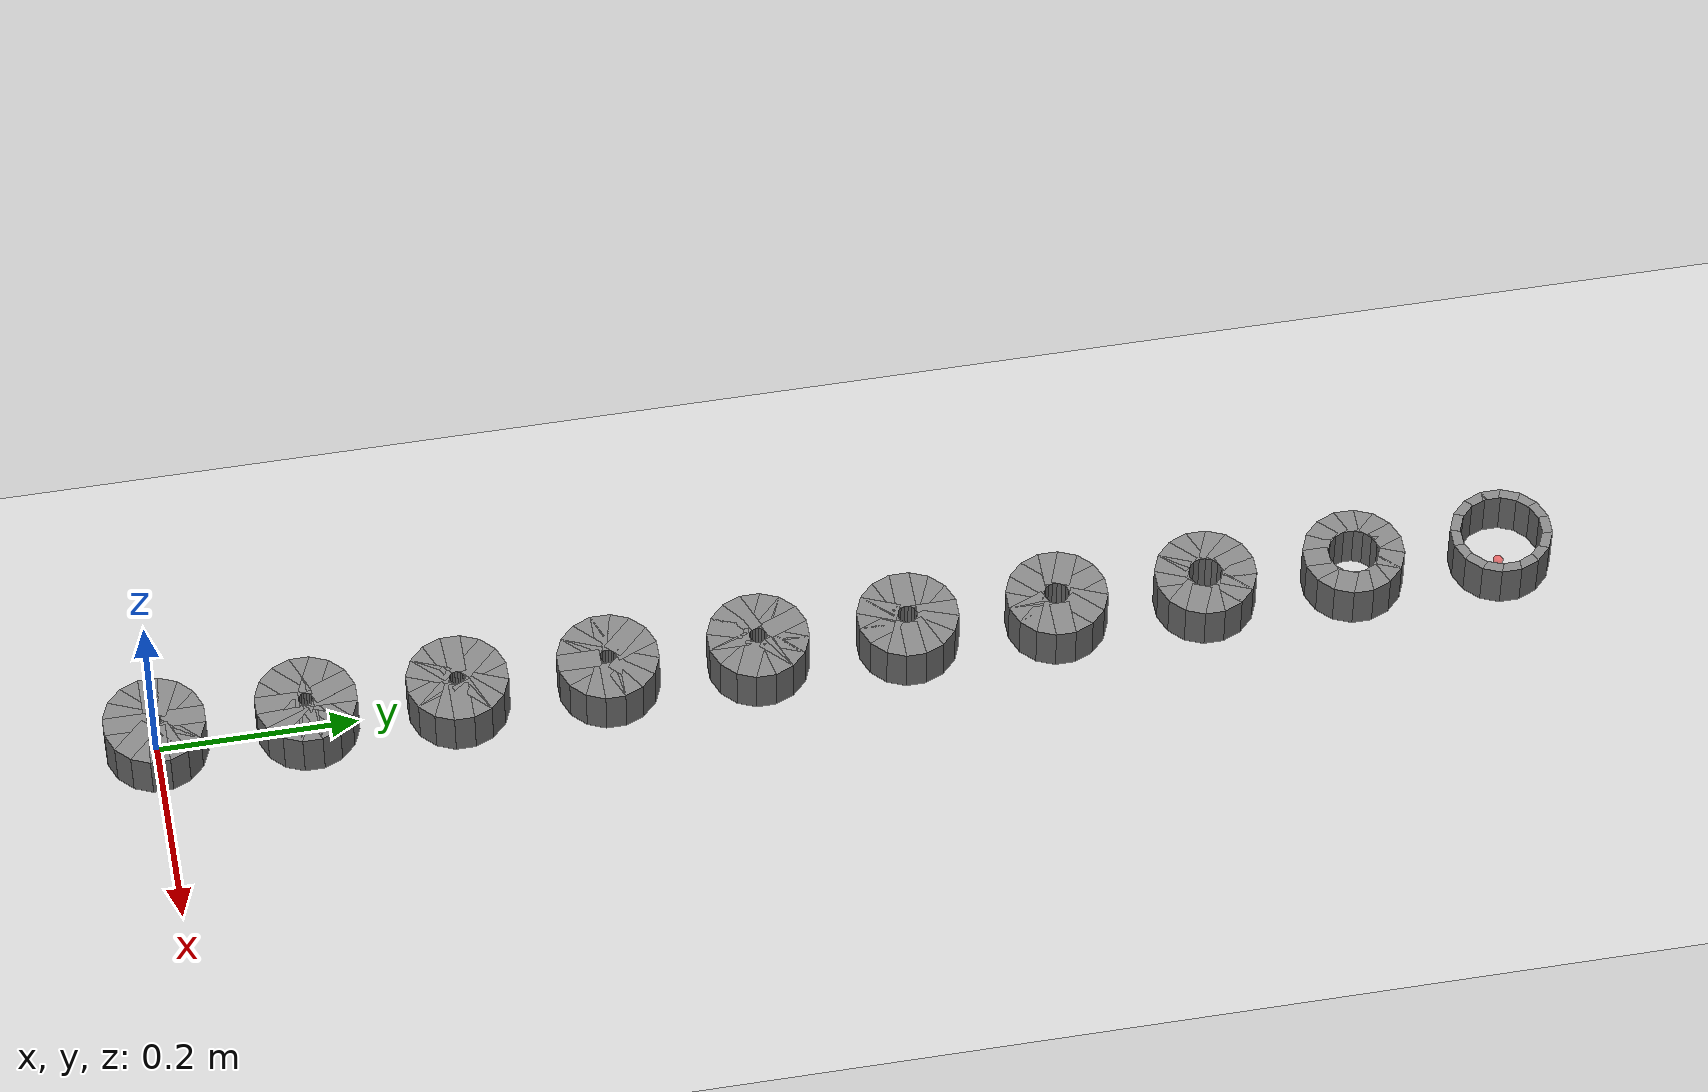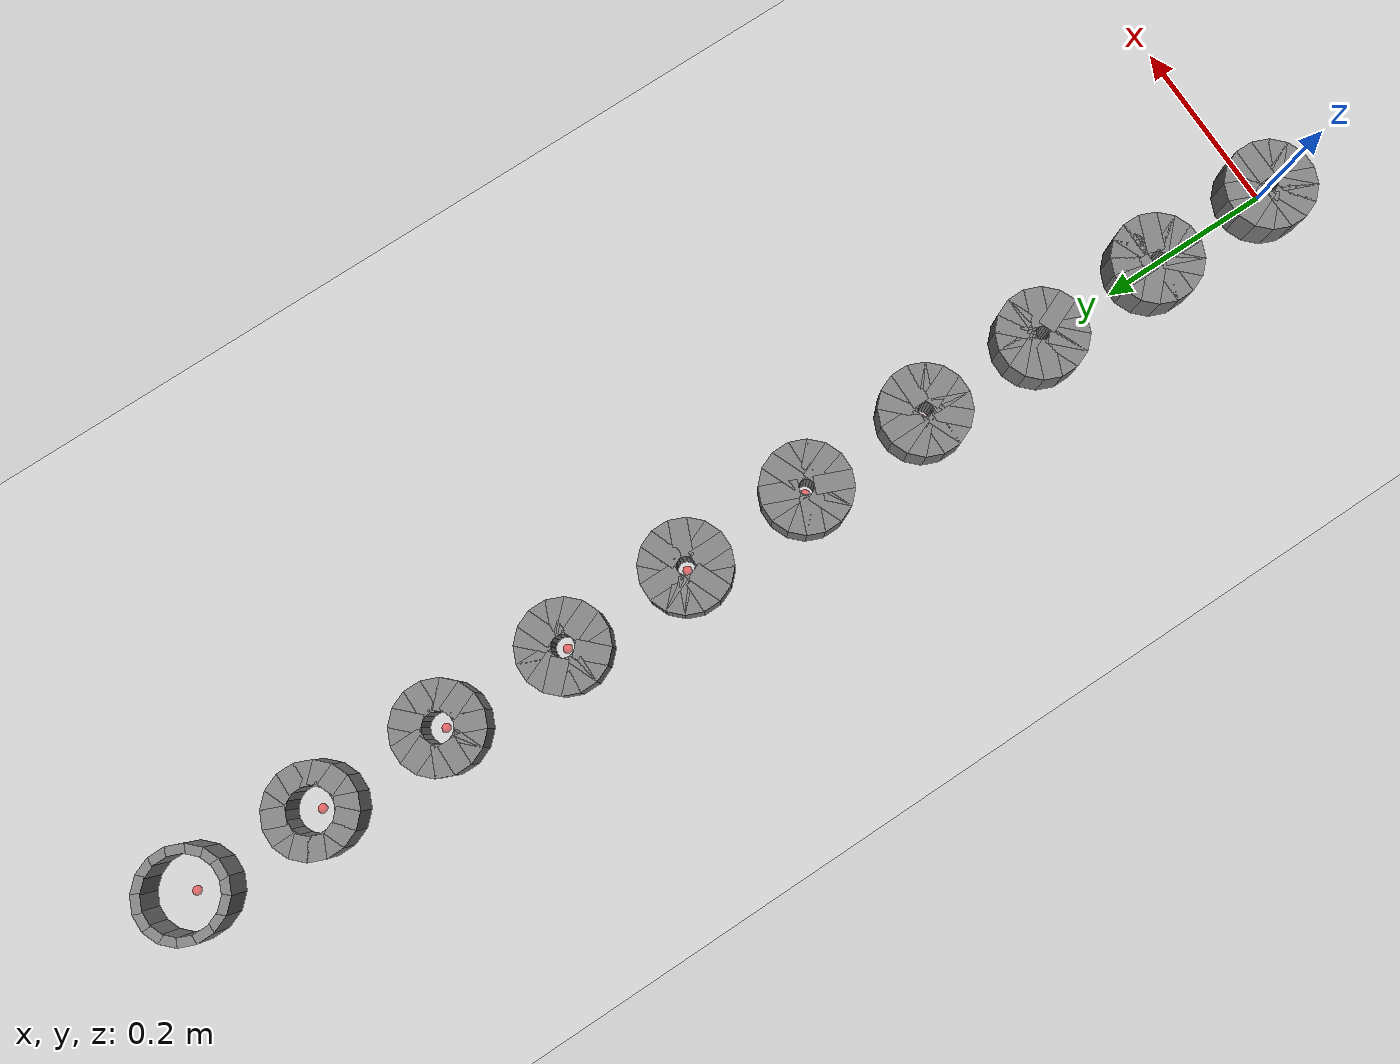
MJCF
<?xml version="1.0" ?>

<mujoco>
  <compiler angle="radian" coordinate="local" meshdir="meshes/"/>

  <default>
    <joint damping="0.5"/>
    <default class="visual">
      <geom contype="0" conaffinity="0"/>
    </default>
    <default class="collision">
      <geom contype="1" conaffinity="1"/>
    </default>
    <site rgba="1 0 0 .5"/>
  </default>

  <asset>
    <texture type="skybox" builtin="gradient" rgb1="1 1 1" rgb2=".6 .8 1" width="256" height="256"/>
  </asset>

  <worldbody>
    <light pos="0 0 1000" castshadow="false"/>
    <geom type="plane" size="10 10 1" rgba=".8 .8 .8 1"/>

    <body pos="0 0 0">
      <include file="hole/polyhedral_hole_inner=0-006856_outer=0-05_height=0-05_num_facets=16_id=090.xml"/>
    </body>
    <body pos="0 .15 0">
      <include file="hole/polyhedral_hole_inner=0-006967_outer=0-05_height=0-05_num_facets=16_id=080.xml"/>
    </body>
    <body pos="0 .3 0">
      <include file="hole/polyhedral_hole_inner=0-007172_outer=0-05_height=0-05_num_facets=16_id=070.xml"/>
    </body>
    <body pos="0 .45 0">
      <include file="hole/polyhedral_hole_inner=0-007553_outer=0-05_height=0-05_num_facets=16_id=060.xml"/>
    </body>
    <body pos="0 .6 0">
      <include file="hole/polyhedral_hole_inner=0-008257_outer=0-05_height=0-05_num_facets=16_id=050.xml"/>
    </body>
    <body pos="0 .75 0">
      <include file="hole/polyhedral_hole_inner=0-009560_outer=0-05_height=0-05_num_facets=16_id=040.xml"/>
    </body>
    <body pos="0 .9 0">
      <include file="hole/polyhedral_hole_inner=0-011973_outer=0-05_height=0-05_num_facets=16_id=030.xml"/>
    </body>
    <body pos="0 1.05 0">
      <include file="hole/polyhedral_hole_inner=0-016438_outer=0-05_height=0-05_num_facets=16_id=020.xml"/>
    </body>
    <body pos="0 1.2 0">
      <include file="hole/polyhedral_hole_inner=0-024703_outer=0-05_height=0-05_num_facets=16_id=010.xml"/>
    </body>

    <body pos="0 1.35 0">
      <include file="hole/polyhedral_hole_inner=0-040000_outer=0-05_height=0-05_num_facets=16_id=000.xml"/>
    </body>
  </worldbody>
</mujoco>

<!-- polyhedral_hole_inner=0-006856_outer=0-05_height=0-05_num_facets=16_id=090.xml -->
<mujoco>
	<body name="hole">
		<geom class="collision" euler="0 0 1.5707963267948966" pos="0.028427763865818186 0.0 0.025" size="0.009945618368982879 0.02157223613418182 0.025" type="box"/>
		<geom class="collision" euler="0 0 1.9634954084936207" pos="0.026263829190693356 0.010878834250635577 0.025" size="0.009945618368982879 0.02157223613418182 0.025" type="box"/>
		<geom class="collision" euler="0 0 2.356194490192345" pos="0.020101464603489945 0.02010146460348994 0.025" size="0.009945618368982879 0.02157223613418182 0.025" type="box"/>
		<geom class="collision" euler="0 0 2.748893571891069" pos="0.010878834250635579 0.026263829190693356 0.025" size="0.009945618368982879 0.02157223613418182 0.025" type="box"/>
		<geom class="collision" euler="0 0 3.141592653589793" pos="1.7406985012595515e-18 0.028427763865818186 0.025" size="0.009945618368982879 0.02157223613418182 0.025" type="box"/>
		<geom class="collision" euler="0 0 3.5342917352885173" pos="-0.010878834250635575 0.026263829190693356 0.025" size="0.009945618368982879 0.02157223613418182 0.025" type="box"/>
		<geom class="collision" euler="0 0 3.9269908169872414" pos="-0.02010146460348994 0.020101464603489945 0.025" size="0.009945618368982879 0.02157223613418182 0.025" type="box"/>
		<geom class="collision" euler="0 0 4.319689898685965" pos="-0.026263829190693356 0.01087883425063558 0.025" size="0.009945618368982879 0.02157223613418182 0.025" type="box"/>
		<geom class="collision" euler="0 0 4.71238898038469" pos="-0.028427763865818186 3.481397002519103e-18 0.025" size="0.009945618368982879 0.02157223613418182 0.025" type="box"/>
		<geom class="collision" euler="0 0 5.105088062083414" pos="-0.02626382919069336 -0.010878834250635573 0.025" size="0.009945618368982879 0.02157223613418182 0.025" type="box"/>
		<geom class="collision" euler="0 0 5.497787143782138" pos="-0.02010146460348995 -0.02010146460348994 0.025" size="0.009945618368982879 0.02157223613418182 0.025" type="box"/>
		<geom class="collision" euler="0 0 5.890486225480862" pos="-0.010878834250635593 -0.02626382919069335 0.025" size="0.009945618368982879 0.02157223613418182 0.025" type="box"/>
		<geom class="collision" euler="0 0 6.283185307179586" pos="-5.222095503778654e-18 -0.028427763865818186 0.025" size="0.009945618368982879 0.02157223613418182 0.025" type="box"/>
		<geom class="collision" euler="0 0 6.675884388878311" pos="0.010878834250635584 -0.026263829190693352 0.025" size="0.009945618368982879 0.02157223613418182 0.025" type="box"/>
		<geom class="collision" euler="0 0 7.0685834705770345" pos="0.020101464603489938 -0.02010146460348995 0.025" size="0.009945618368982879 0.02157223613418182 0.025" type="box"/>
		<geom class="collision" euler="0 0 7.461282552275758" pos="0.02626382919069335 -0.010878834250635594 0.025" size="0.009945618368982879 0.02157223613418182 0.025" type="box"/>
		<site euler="-3.141592653589793 0 0" name="hole_base" pos="0 0 0" size="0.005 0.005 0.005"/>
	</body>
</mujoco>

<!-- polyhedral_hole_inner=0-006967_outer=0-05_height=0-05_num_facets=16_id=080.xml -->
<mujoco>
	<body name="hole">
		<geom class="collision" euler="0 0 1.5707963267948966" pos="0.028483295921134723 0.0 0.025" size="0.009945618368982879 0.021516704078865277 0.025" type="box"/>
		<geom class="collision" euler="0 0 1.9634954084936207" pos="0.026315134119998588 0.010900085448170397 0.025" size="0.009945618368982879 0.021516704078865277 0.025" type="box"/>
		<geom class="collision" euler="0 0 2.356194490192345" pos="0.020140731696377492 0.02014073169637749 0.025" size="0.009945618368982879 0.021516704078865277 0.025" type="box"/>
		<geom class="collision" euler="0 0 2.748893571891069" pos="0.010900085448170399 0.026315134119998588 0.025" size="0.009945618368982879 0.021516704078865277 0.025" type="box"/>
		<geom class="collision" euler="0 0 3.141592653589793" pos="1.744098858949225e-18 0.028483295921134723 0.025" size="0.009945618368982879 0.021516704078865277 0.025" type="box"/>
		<geom class="collision" euler="0 0 3.5342917352885173" pos="-0.010900085448170395 0.026315134119998588 0.025" size="0.009945618368982879 0.021516704078865277 0.025" type="box"/>
		<geom class="collision" euler="0 0 3.9269908169872414" pos="-0.02014073169637749 0.020140731696377492 0.025" size="0.009945618368982879 0.021516704078865277 0.025" type="box"/>
		<geom class="collision" euler="0 0 4.319689898685965" pos="-0.026315134119998588 0.0109000854481704 0.025" size="0.009945618368982879 0.021516704078865277 0.025" type="box"/>
		<geom class="collision" euler="0 0 4.71238898038469" pos="-0.028483295921134723 3.48819771789845e-18 0.025" size="0.009945618368982879 0.021516704078865277 0.025" type="box"/>
		<geom class="collision" euler="0 0 5.105088062083414" pos="-0.02631513411999859 -0.010900085448170393 0.025" size="0.009945618368982879 0.021516704078865277 0.025" type="box"/>
		<geom class="collision" euler="0 0 5.497787143782138" pos="-0.020140731696377496 -0.02014073169637749 0.025" size="0.009945618368982879 0.021516704078865277 0.025" type="box"/>
		<geom class="collision" euler="0 0 5.890486225480862" pos="-0.010900085448170413 -0.02631513411999858 0.025" size="0.009945618368982879 0.021516704078865277 0.025" type="box"/>
		<geom class="collision" euler="0 0 6.283185307179586" pos="-5.232296576847674e-18 -0.028483295921134723 0.025" size="0.009945618368982879 0.021516704078865277 0.025" type="box"/>
		<geom class="collision" euler="0 0 6.675884388878311" pos="0.010900085448170404 -0.026315134119998584 0.025" size="0.009945618368982879 0.021516704078865277 0.025" type="box"/>
		<geom class="collision" euler="0 0 7.0685834705770345" pos="0.020140731696377485 -0.020140731696377496 0.025" size="0.009945618368982879 0.021516704078865277 0.025" type="box"/>
		<geom class="collision" euler="0 0 7.461282552275758" pos="0.02631513411999858 -0.010900085448170414 0.025" size="0.009945618368982879 0.021516704078865277 0.025" type="box"/>
		<site euler="-3.141592653589793 0 0" name="hole_base" pos="0 0 0" size="0.005 0.005 0.005"/>
	</body>
</mujoco>

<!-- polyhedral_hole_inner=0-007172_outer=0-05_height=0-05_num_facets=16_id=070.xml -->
<mujoco>
	<body name="hole">
		<geom class="collision" euler="0 0 1.5707963267948966" pos="0.028586079378571244 0.0 0.025" size="0.009945618368982879 0.021413920621428755 0.025" type="box"/>
		<geom class="collision" euler="0 0 1.9634954084936207" pos="0.026410093652604934 0.010939418974452556 0.025" size="0.009945618368982879 0.021413920621428755 0.025" type="box"/>
		<geom class="collision" euler="0 0 2.356194490192345" pos="0.020213410576124656 0.020213410576124653 0.025" size="0.009945618368982879 0.021413920621428755 0.025" type="box"/>
		<geom class="collision" euler="0 0 2.748893571891069" pos="0.010939418974452558 0.026410093652604934 0.025" size="0.009945618368982879 0.021413920621428755 0.025" type="box"/>
		<geom class="collision" euler="0 0 3.141592653589793" pos="1.750392530556972e-18 0.028586079378571244 0.025" size="0.009945618368982879 0.021413920621428755 0.025" type="box"/>
		<geom class="collision" euler="0 0 3.5342917352885173" pos="-0.010939418974452554 0.026410093652604934 0.025" size="0.009945618368982879 0.021413920621428755 0.025" type="box"/>
		<geom class="collision" euler="0 0 3.9269908169872414" pos="-0.020213410576124653 0.020213410576124656 0.025" size="0.009945618368982879 0.021413920621428755 0.025" type="box"/>
		<geom class="collision" euler="0 0 4.319689898685965" pos="-0.026410093652604934 0.01093941897445256 0.025" size="0.009945618368982879 0.021413920621428755 0.025" type="box"/>
		<geom class="collision" euler="0 0 4.71238898038469" pos="-0.028586079378571244 3.500785061113944e-18 0.025" size="0.009945618368982879 0.021413920621428755 0.025" type="box"/>
		<geom class="collision" euler="0 0 5.105088062083414" pos="-0.026410093652604938 -0.010939418974452553 0.025" size="0.009945618368982879 0.021413920621428755 0.025" type="box"/>
		<geom class="collision" euler="0 0 5.497787143782138" pos="-0.02021341057612466 -0.020213410576124653 0.025" size="0.009945618368982879 0.021413920621428755 0.025" type="box"/>
		<geom class="collision" euler="0 0 5.890486225480862" pos="-0.010939418974452572 -0.026410093652604927 0.025" size="0.009945618368982879 0.021413920621428755 0.025" type="box"/>
		<geom class="collision" euler="0 0 6.283185307179586" pos="-5.251177591670915e-18 -0.028586079378571244 0.025" size="0.009945618368982879 0.021413920621428755 0.025" type="box"/>
		<geom class="collision" euler="0 0 6.675884388878311" pos="0.010939418974452563 -0.02641009365260493 0.025" size="0.009945618368982879 0.021413920621428755 0.025" type="box"/>
		<geom class="collision" euler="0 0 7.0685834705770345" pos="0.02021341057612465 -0.02021341057612466 0.025" size="0.009945618368982879 0.021413920621428755 0.025" type="box"/>
		<geom class="collision" euler="0 0 7.461282552275758" pos="0.026410093652604927 -0.010939418974452574 0.025" size="0.009945618368982879 0.021413920621428755 0.025" type="box"/>
		<site euler="-3.141592653589793 0 0" name="hole_base" pos="0 0 0" size="0.005 0.005 0.005"/>
	</body>
</mujoco>

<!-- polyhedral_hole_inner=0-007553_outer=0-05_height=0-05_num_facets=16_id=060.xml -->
<mujoco>
	<body name="hole">
		<geom class="collision" euler="0 0 1.5707963267948966" pos="0.02877631975527595 0.0 0.025" size="0.009945618368982879 0.021223680244724055 0.025" type="box"/>
		<geom class="collision" euler="0 0 1.9634954084936207" pos="0.02658585284289965 0.011012220814784342 0.025" size="0.009945618368982879 0.021223680244724055 0.025" type="box"/>
		<geom class="collision" euler="0 0 2.356194490192345" pos="0.02034793083654804 0.020347930836548036 0.025" size="0.009945618368982879 0.021223680244724055 0.025" type="box"/>
		<geom class="collision" euler="0 0 2.748893571891069" pos="0.011012220814784342 0.02658585284289965 0.025" size="0.009945618368982879 0.021223680244724055 0.025" type="box"/>
		<geom class="collision" euler="0 0 3.141592653589793" pos="1.762041393976972e-18 0.02877631975527595 0.025" size="0.009945618368982879 0.021223680244724055 0.025" type="box"/>
		<geom class="collision" euler="0 0 3.5342917352885173" pos="-0.01101222081478434 0.02658585284289965 0.025" size="0.009945618368982879 0.021223680244724055 0.025" type="box"/>
		<geom class="collision" euler="0 0 3.9269908169872414" pos="-0.020347930836548036 0.02034793083654804 0.025" size="0.009945618368982879 0.021223680244724055 0.025" type="box"/>
		<geom class="collision" euler="0 0 4.319689898685965" pos="-0.02658585284289965 0.011012220814784344 0.025" size="0.009945618368982879 0.021223680244724055 0.025" type="box"/>
		<geom class="collision" euler="0 0 4.71238898038469" pos="-0.02877631975527595 3.524082787953944e-18 0.025" size="0.009945618368982879 0.021223680244724055 0.025" type="box"/>
		<geom class="collision" euler="0 0 5.105088062083414" pos="-0.026585852842899653 -0.011012220814784339 0.025" size="0.009945618368982879 0.021223680244724055 0.025" type="box"/>
		<geom class="collision" euler="0 0 5.497787143782138" pos="-0.020347930836548043 -0.020347930836548036 0.025" size="0.009945618368982879 0.021223680244724055 0.025" type="box"/>
		<geom class="collision" euler="0 0 5.890486225480862" pos="-0.011012220814784358 -0.026585852842899646 0.025" size="0.009945618368982879 0.021223680244724055 0.025" type="box"/>
		<geom class="collision" euler="0 0 6.283185307179586" pos="-5.286124181930916e-18 -0.02877631975527595 0.025" size="0.009945618368982879 0.021223680244724055 0.025" type="box"/>
		<geom class="collision" euler="0 0 6.675884388878311" pos="0.011012220814784347 -0.026585852842899646 0.025" size="0.009945618368982879 0.021223680244724055 0.025" type="box"/>
		<geom class="collision" euler="0 0 7.0685834705770345" pos="0.020347930836548032 -0.020347930836548043 0.025" size="0.009945618368982879 0.021223680244724055 0.025" type="box"/>
		<geom class="collision" euler="0 0 7.461282552275758" pos="0.026585852842899646 -0.01101222081478436 0.025" size="0.009945618368982879 0.021223680244724055 0.025" type="box"/>
		<site euler="-3.141592653589793 0 0" name="hole_base" pos="0 0 0" size="0.005 0.005 0.005"/>
	</body>
</mujoco>

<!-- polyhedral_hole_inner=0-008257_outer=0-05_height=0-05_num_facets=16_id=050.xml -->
<mujoco>
	<body name="hole">
		<geom class="collision" euler="0 0 1.5707963267948966" pos="0.029128432846539674 0.0 0.025" size="0.009945618368982879 0.02087156715346033 0.025" type="box"/>
		<geom class="collision" euler="0 0 1.9634954084936207" pos="0.026911162921047484 0.011146968661129825 0.025" size="0.009945618368982879 0.02087156715346033 0.025" type="box"/>
		<geom class="collision" euler="0 0 2.356194490192345" pos="0.020596912391125176 0.020596912391125172 0.025" size="0.009945618368982879 0.02087156715346033 0.025" type="box"/>
		<geom class="collision" euler="0 0 2.748893571891069" pos="0.011146968661129826 0.026911162921047484 0.025" size="0.009945618368982879 0.02087156715346033 0.025" type="box"/>
		<geom class="collision" euler="0 0 3.141592653589793" pos="1.783602102484672e-18 0.029128432846539674 0.025" size="0.009945618368982879 0.02087156715346033 0.025" type="box"/>
		<geom class="collision" euler="0 0 3.5342917352885173" pos="-0.011146968661129823 0.026911162921047484 0.025" size="0.009945618368982879 0.02087156715346033 0.025" type="box"/>
		<geom class="collision" euler="0 0 3.9269908169872414" pos="-0.020596912391125172 0.020596912391125176 0.025" size="0.009945618368982879 0.02087156715346033 0.025" type="box"/>
		<geom class="collision" euler="0 0 4.319689898685965" pos="-0.026911162921047484 0.011146968661129828 0.025" size="0.009945618368982879 0.02087156715346033 0.025" type="box"/>
		<geom class="collision" euler="0 0 4.71238898038469" pos="-0.029128432846539674 3.567204204969344e-18 0.025" size="0.009945618368982879 0.02087156715346033 0.025" type="box"/>
		<geom class="collision" euler="0 0 5.105088062083414" pos="-0.026911162921047487 -0.011146968661129821 0.025" size="0.009945618368982879 0.02087156715346033 0.025" type="box"/>
		<geom class="collision" euler="0 0 5.497787143782138" pos="-0.02059691239112518 -0.020596912391125172 0.025" size="0.009945618368982879 0.02087156715346033 0.025" type="box"/>
		<geom class="collision" euler="0 0 5.890486225480862" pos="-0.011146968661129842 -0.026911162921047477 0.025" size="0.009945618368982879 0.02087156715346033 0.025" type="box"/>
		<geom class="collision" euler="0 0 6.283185307179586" pos="-5.350806307454015e-18 -0.029128432846539674 0.025" size="0.009945618368982879 0.02087156715346033 0.025" type="box"/>
		<geom class="collision" euler="0 0 6.675884388878311" pos="0.011146968661129832 -0.02691116292104748 0.025" size="0.009945618368982879 0.02087156715346033 0.025" type="box"/>
		<geom class="collision" euler="0 0 7.0685834705770345" pos="0.02059691239112517 -0.02059691239112518 0.025" size="0.009945618368982879 0.02087156715346033 0.025" type="box"/>
		<geom class="collision" euler="0 0 7.461282552275758" pos="0.026911162921047477 -0.011146968661129844 0.025" size="0.009945618368982879 0.02087156715346033 0.025" type="box"/>
		<site euler="-3.141592653589793 0 0" name="hole_base" pos="0 0 0" size="0.005 0.005 0.005"/>
	</body>
</mujoco>

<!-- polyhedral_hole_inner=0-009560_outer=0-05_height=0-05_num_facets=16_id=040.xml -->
<mujoco>
	<body name="hole">
		<geom class="collision" euler="0 0 1.5707963267948966" pos="0.029780153744000618 0.0 0.025" size="0.009945618368982879 0.02021984625599938 0.025" type="box"/>
		<geom class="collision" euler="0 0 1.9634954084936207" pos="0.027513274519121538 0.011396371451114235 0.025" size="0.009945618368982879 0.02021984625599938 0.025" type="box"/>
		<geom class="collision" euler="0 0 2.356194490192345" pos="0.021057748657160792 0.02105774865716079 0.025" size="0.009945618368982879 0.02021984625599938 0.025" type="box"/>
		<geom class="collision" euler="0 0 2.748893571891069" pos="0.011396371451114237 0.027513274519121538 0.025" size="0.009945618368982879 0.02021984625599938 0.025" type="box"/>
		<geom class="collision" euler="0 0 3.141592653589793" pos="1.823508498035321e-18 0.029780153744000618 0.025" size="0.009945618368982879 0.02021984625599938 0.025" type="box"/>
		<geom class="collision" euler="0 0 3.5342917352885173" pos="-0.011396371451114233 0.027513274519121538 0.025" size="0.009945618368982879 0.02021984625599938 0.025" type="box"/>
		<geom class="collision" euler="0 0 3.9269908169872414" pos="-0.02105774865716079 0.021057748657160792 0.025" size="0.009945618368982879 0.02021984625599938 0.025" type="box"/>
		<geom class="collision" euler="0 0 4.319689898685965" pos="-0.027513274519121538 0.011396371451114239 0.025" size="0.009945618368982879 0.02021984625599938 0.025" type="box"/>
		<geom class="collision" euler="0 0 4.71238898038469" pos="-0.029780153744000618 3.647016996070642e-18 0.025" size="0.009945618368982879 0.02021984625599938 0.025" type="box"/>
		<geom class="collision" euler="0 0 5.105088062083414" pos="-0.02751327451912154 -0.011396371451114232 0.025" size="0.009945618368982879 0.02021984625599938 0.025" type="box"/>
		<geom class="collision" euler="0 0 5.497787143782138" pos="-0.021057748657160792 -0.02105774865716079 0.025" size="0.009945618368982879 0.02021984625599938 0.025" type="box"/>
		<geom class="collision" euler="0 0 5.890486225480862" pos="-0.011396371451114252 -0.02751327451912153 0.025" size="0.009945618368982879 0.02021984625599938 0.025" type="box"/>
		<geom class="collision" euler="0 0 6.283185307179586" pos="-5.4705254941059635e-18 -0.029780153744000618 0.025" size="0.009945618368982879 0.02021984625599938 0.025" type="box"/>
		<geom class="collision" euler="0 0 6.675884388878311" pos="0.011396371451114242 -0.027513274519121535 0.025" size="0.009945618368982879 0.02021984625599938 0.025" type="box"/>
		<geom class="collision" euler="0 0 7.0685834705770345" pos="0.021057748657160785 -0.021057748657160792 0.025" size="0.009945618368982879 0.02021984625599938 0.025" type="box"/>
		<geom class="collision" euler="0 0 7.461282552275758" pos="0.02751327451912153 -0.011396371451114254 0.025" size="0.009945618368982879 0.02021984625599938 0.025" type="box"/>
		<site euler="-3.141592653589793 0 0" name="hole_base" pos="0 0 0" size="0.005 0.005 0.005"/>
	</body>
</mujoco>

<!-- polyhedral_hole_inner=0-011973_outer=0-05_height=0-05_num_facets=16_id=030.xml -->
<mujoco>
	<body name="hole">
		<geom class="collision" euler="0 0 1.5707963267948966" pos="0.030986414285643412 0.0 0.025" size="0.009945618368982879 0.019013585714356587 0.025" type="box"/>
		<geom class="collision" euler="0 0 1.9634954084936207" pos="0.028627713944421294 0.011857987375516672 0.025" size="0.009945618368982879 0.019013585714356587 0.025" type="box"/>
		<geom class="collision" euler="0 0 2.356194490192345" pos="0.02191070366603417 0.021910703666034165 0.025" size="0.009945618368982879 0.019013585714356587 0.025" type="box"/>
		<geom class="collision" euler="0 0 2.748893571891069" pos="0.011857987375516674 0.028627713944421294 0.025" size="0.009945618368982879 0.019013585714356587 0.025" type="box"/>
		<geom class="collision" euler="0 0 3.141592653589793" pos="1.8973706535983513e-18 0.030986414285643412 0.025" size="0.009945618368982879 0.019013585714356587 0.025" type="box"/>
		<geom class="collision" euler="0 0 3.5342917352885173" pos="-0.01185798737551667 0.028627713944421294 0.025" size="0.009945618368982879 0.019013585714356587 0.025" type="box"/>
		<geom class="collision" euler="0 0 3.9269908169872414" pos="-0.021910703666034165 0.02191070366603417 0.025" size="0.009945618368982879 0.019013585714356587 0.025" type="box"/>
		<geom class="collision" euler="0 0 4.319689898685965" pos="-0.028627713944421294 0.011857987375516675 0.025" size="0.009945618368982879 0.019013585714356587 0.025" type="box"/>
		<geom class="collision" euler="0 0 4.71238898038469" pos="-0.030986414285643412 3.7947413071967026e-18 0.025" size="0.009945618368982879 0.019013585714356587 0.025" type="box"/>
		<geom class="collision" euler="0 0 5.105088062083414" pos="-0.028627713944421297 -0.011857987375516668 0.025" size="0.009945618368982879 0.019013585714356587 0.025" type="box"/>
		<geom class="collision" euler="0 0 5.497787143782138" pos="-0.021910703666034172 -0.021910703666034165 0.025" size="0.009945618368982879 0.019013585714356587 0.025" type="box"/>
		<geom class="collision" euler="0 0 5.890486225480862" pos="-0.01185798737551669 -0.028627713944421287 0.025" size="0.009945618368982879 0.019013585714356587 0.025" type="box"/>
		<geom class="collision" euler="0 0 6.283185307179586" pos="-5.692111960795053e-18 -0.030986414285643412 0.025" size="0.009945618368982879 0.019013585714356587 0.025" type="box"/>
		<geom class="collision" euler="0 0 6.675884388878311" pos="0.011857987375516679 -0.02862771394442129 0.025" size="0.009945618368982879 0.019013585714356587 0.025" type="box"/>
		<geom class="collision" euler="0 0 7.0685834705770345" pos="0.021910703666034162 -0.021910703666034172 0.025" size="0.009945618368982879 0.019013585714356587 0.025" type="box"/>
		<geom class="collision" euler="0 0 7.461282552275758" pos="0.028627713944421287 -0.011857987375516691 0.025" size="0.009945618368982879 0.019013585714356587 0.025" type="box"/>
		<site euler="-3.141592653589793 0 0" name="hole_base" pos="0 0 0" size="0.005 0.005 0.005"/>
	</body>
</mujoco>

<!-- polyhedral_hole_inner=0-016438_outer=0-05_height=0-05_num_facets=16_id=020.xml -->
<mujoco>
	<body name="hole">
		<geom class="collision" euler="0 0 1.5707963267948966" pos="0.033219064028797554 0.0 0.025" size="0.009945618368982879 0.016780935971202456 0.025" type="box"/>
		<geom class="collision" euler="0 0 1.9634954084936207" pos="0.030690413345387985 0.012712385442495935 0.025" size="0.009945618368982879 0.016780935971202456 0.025" type="box"/>
		<geom class="collision" euler="0 0 2.356194490192345" pos="0.023489425439432866 0.023489425439432863 0.025" size="0.009945618368982879 0.016780935971202456 0.025" type="box"/>
		<geom class="collision" euler="0 0 2.748893571891069" pos="0.012712385442495937 0.030690413345387985 0.025" size="0.009945618368982879 0.016780935971202456 0.025" type="box"/>
		<geom class="collision" euler="0 0 3.141592653589793" pos="2.0340810216768953e-18 0.033219064028797554 0.025" size="0.009945618368982879 0.016780935971202456 0.025" type="box"/>
		<geom class="collision" euler="0 0 3.5342917352885173" pos="-0.012712385442495934 0.030690413345387985 0.025" size="0.009945618368982879 0.016780935971202456 0.025" type="box"/>
		<geom class="collision" euler="0 0 3.9269908169872414" pos="-0.023489425439432863 0.023489425439432866 0.025" size="0.009945618368982879 0.016780935971202456 0.025" type="box"/>
		<geom class="collision" euler="0 0 4.319689898685965" pos="-0.030690413345387985 0.012712385442495939 0.025" size="0.009945618368982879 0.016780935971202456 0.025" type="box"/>
		<geom class="collision" euler="0 0 4.71238898038469" pos="-0.033219064028797554 4.0681620433537906e-18 0.025" size="0.009945618368982879 0.016780935971202456 0.025" type="box"/>
		<geom class="collision" euler="0 0 5.105088062083414" pos="-0.03069041334538799 -0.012712385442495932 0.025" size="0.009945618368982879 0.016780935971202456 0.025" type="box"/>
		<geom class="collision" euler="0 0 5.497787143782138" pos="-0.02348942543943287 -0.023489425439432863 0.025" size="0.009945618368982879 0.016780935971202456 0.025" type="box"/>
		<geom class="collision" euler="0 0 5.890486225480862" pos="-0.012712385442495954 -0.03069041334538798 0.025" size="0.009945618368982879 0.016780935971202456 0.025" type="box"/>
		<geom class="collision" euler="0 0 6.283185307179586" pos="-6.102243065030685e-18 -0.033219064028797554 0.025" size="0.009945618368982879 0.016780935971202456 0.025" type="box"/>
		<geom class="collision" euler="0 0 6.675884388878311" pos="0.012712385442495942 -0.030690413345387982 0.025" size="0.009945618368982879 0.016780935971202456 0.025" type="box"/>
		<geom class="collision" euler="0 0 7.0685834705770345" pos="0.02348942543943286 -0.02348942543943287 0.025" size="0.009945618368982879 0.016780935971202456 0.025" type="box"/>
		<geom class="collision" euler="0 0 7.461282552275758" pos="0.03069041334538798 -0.012712385442495956 0.025" size="0.009945618368982879 0.016780935971202456 0.025" type="box"/>
		<site euler="-3.141592653589793 0 0" name="hole_base" pos="0 0 0" size="0.005 0.005 0.005"/>
	</body>
</mujoco>

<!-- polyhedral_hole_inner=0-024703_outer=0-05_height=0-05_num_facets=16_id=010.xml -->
<mujoco>
	<body name="hole">
		<geom class="collision" euler="0 0 1.5707963267948966" pos="0.0373514423198238 0.0 0.025" size="0.009945618368982879 0.012648557680176205 0.025" type="box"/>
		<geom class="collision" euler="0 0 1.9634954084936207" pos="0.0345082330690611 0.014293778150736843 0.025" size="0.009945618368982879 0.012648557680176205 0.025" type="box"/>
		<geom class="collision" euler="0 0 2.356194490192345" pos="0.026411458151445598 0.026411458151445594 0.025" size="0.009945618368982879 0.012648557680176205 0.025" type="box"/>
		<geom class="collision" euler="0 0 2.748893571891069" pos="0.014293778150736845 0.0345082330690611 0.025" size="0.009945618368982879 0.012648557680176205 0.025" type="box"/>
		<geom class="collision" euler="0 0 3.141592653589793" pos="2.2871162140254603e-18 0.0373514423198238 0.025" size="0.009945618368982879 0.012648557680176205 0.025" type="box"/>
		<geom class="collision" euler="0 0 3.5342917352885173" pos="-0.01429377815073684 0.0345082330690611 0.025" size="0.009945618368982879 0.012648557680176205 0.025" type="box"/>
		<geom class="collision" euler="0 0 3.9269908169872414" pos="-0.026411458151445594 0.026411458151445598 0.025" size="0.009945618368982879 0.012648557680176205 0.025" type="box"/>
		<geom class="collision" euler="0 0 4.319689898685965" pos="-0.0345082330690611 0.014293778150736847 0.025" size="0.009945618368982879 0.012648557680176205 0.025" type="box"/>
		<geom class="collision" euler="0 0 4.71238898038469" pos="-0.0373514423198238 4.5742324280509206e-18 0.025" size="0.009945618368982879 0.012648557680176205 0.025" type="box"/>
		<geom class="collision" euler="0 0 5.105088062083414" pos="-0.0345082330690611 -0.014293778150736838 0.025" size="0.009945618368982879 0.012648557680176205 0.025" type="box"/>
		<geom class="collision" euler="0 0 5.497787143782138" pos="-0.026411458151445605 -0.026411458151445594 0.025" size="0.009945618368982879 0.012648557680176205 0.025" type="box"/>
		<geom class="collision" euler="0 0 5.890486225480862" pos="-0.014293778150736864 -0.034508233069061096 0.025" size="0.009945618368982879 0.012648557680176205 0.025" type="box"/>
		<geom class="collision" euler="0 0 6.283185307179586" pos="-6.86134864207638e-18 -0.0373514423198238 0.025" size="0.009945618368982879 0.012648557680176205 0.025" type="box"/>
		<geom class="collision" euler="0 0 6.675884388878311" pos="0.01429377815073685 -0.034508233069061096 0.025" size="0.009945618368982879 0.012648557680176205 0.025" type="box"/>
		<geom class="collision" euler="0 0 7.0685834705770345" pos="0.02641145815144559 -0.026411458151445605 0.025" size="0.009945618368982879 0.012648557680176205 0.025" type="box"/>
		<geom class="collision" euler="0 0 7.461282552275758" pos="0.034508233069061096 -0.014293778150736866 0.025" size="0.009945618368982879 0.012648557680176205 0.025" type="box"/>
		<site euler="-3.141592653589793 0 0" name="hole_base" pos="0 0 0" size="0.005 0.005 0.005"/>
	</body>
</mujoco>

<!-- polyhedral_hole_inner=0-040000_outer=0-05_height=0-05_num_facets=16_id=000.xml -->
<mujoco>
	<body name="hole">
		<geom class="collision" euler="0 0 1.5707963267948966" pos="0.045 0.0 0.025" size="0.009945618368982879 0.005000000000000001 0.025" type="box"/>
		<geom class="collision" euler="0 0 1.9634954084936207" pos="0.041574578963007904 0.017220754456429038 0.025" size="0.009945618368982879 0.005000000000000001 0.025" type="box"/>
		<geom class="collision" euler="0 0 2.356194490192345" pos="0.03181980515339464 0.03181980515339464 0.025" size="0.009945618368982879 0.005000000000000001 0.025" type="box"/>
		<geom class="collision" euler="0 0 2.748893571891069" pos="0.01722075445642904 0.041574578963007904 0.025" size="0.009945618368982879 0.005000000000000001 0.025" type="box"/>
		<geom class="collision" euler="0 0 3.141592653589793" pos="2.7554552980815448e-18 0.045 0.025" size="0.009945618368982879 0.005000000000000001 0.025" type="box"/>
		<geom class="collision" euler="0 0 3.5342917352885173" pos="-0.017220754456429038 0.041574578963007904 0.025" size="0.009945618368982879 0.005000000000000001 0.025" type="box"/>
		<geom class="collision" euler="0 0 3.9269908169872414" pos="-0.03181980515339464 0.03181980515339464 0.025" size="0.009945618368982879 0.005000000000000001 0.025" type="box"/>
		<geom class="collision" euler="0 0 4.319689898685965" pos="-0.041574578963007904 0.017220754456429045 0.025" size="0.009945618368982879 0.005000000000000001 0.025" type="box"/>
		<geom class="collision" euler="0 0 4.71238898038469" pos="-0.045 5.5109105961630896e-18 0.025" size="0.009945618368982879 0.005000000000000001 0.025" type="box"/>
		<geom class="collision" euler="0 0 5.105088062083414" pos="-0.041574578963007904 -0.017220754456429035 0.025" size="0.009945618368982879 0.005000000000000001 0.025" type="box"/>
		<geom class="collision" euler="0 0 5.497787143782138" pos="-0.031819805153394644 -0.03181980515339464 0.025" size="0.009945618368982879 0.005000000000000001 0.025" type="box"/>
		<geom class="collision" euler="0 0 5.890486225480862" pos="-0.017220754456429066 -0.04157457896300789 0.025" size="0.009945618368982879 0.005000000000000001 0.025" type="box"/>
		<geom class="collision" euler="0 0 6.283185307179586" pos="-8.266365894244633e-18 -0.045 0.025" size="0.009945618368982879 0.005000000000000001 0.025" type="box"/>
		<geom class="collision" euler="0 0 6.675884388878311" pos="0.01722075445642905 -0.0415745789630079 0.025" size="0.009945618368982879 0.005000000000000001 0.025" type="box"/>
		<geom class="collision" euler="0 0 7.0685834705770345" pos="0.03181980515339463 -0.031819805153394644 0.025" size="0.009945618368982879 0.005000000000000001 0.025" type="box"/>
		<geom class="collision" euler="0 0 7.461282552275758" pos="0.04157457896300789 -0.017220754456429066 0.025" size="0.009945618368982879 0.005000000000000001 0.025" type="box"/>
		<site euler="-3.141592653589793 0 0" name="hole_base" pos="0 0 0" size="0.005 0.005 0.005"/>
	</body>
</mujoco>
